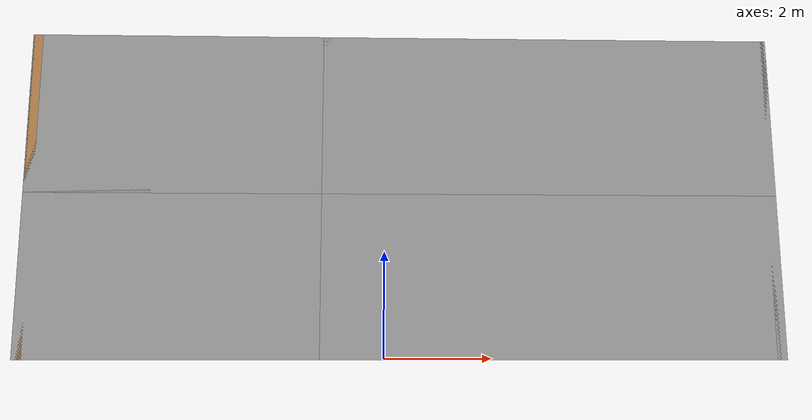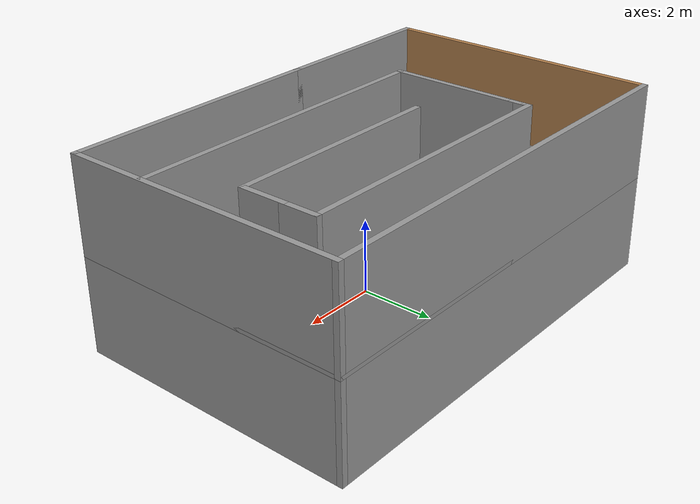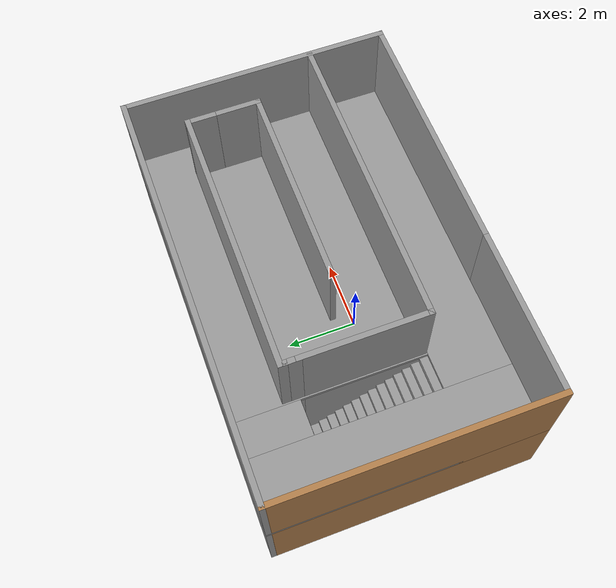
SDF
<?xml version='1.0'?>
<sdf version='1.7'>
  <model name='two_floor'>
    <pose>0.265 0.701087 0 0 -0 0</pose>
    <link name='Floor_3'>
      <pose>-0 -0 2.5 0 -0 0</pose>
      <visual name='Floor_3_Visual_0'>
        <pose>-4.797 0 0.05 0 -0 0</pose>
        <geometry>
          <box>
            <size>1.90601 7.5 0.1</size>
          </box>
        </geometry>
        <material>
          <script>
            <uri>file://media/materials/scripts/gazebo.material</uri>
            <name>Gazebo/Grey</name>
          </script>
          <ambient>1 1 1 1</ambient>
        </material>
        <meta>
          <layer>1</layer>
        </meta>
      </visual>
      <collision name='Floor_3_Collision_0'>
        <geometry>
          <box>
            <size>1.90601 7.5 0.1</size>
          </box>
        </geometry>
        <pose>-4.797 0 0.05 0 -0 0</pose>
      </collision>
      <visual name='Floor_3_Visual_1'>
        <pose>0.953003 -2.71297 0.05 0 -0 0</pose>
        <geometry>
          <box>
            <size>9.59399 2.07405 0.1</size>
          </box>
        </geometry>
        <material>
          <script>
            <uri>file://media/materials/scripts/gazebo.material</uri>
            <name>Gazebo/Grey</name>
          </script>
          <ambient>1 1 1 1</ambient>
        </material>
        <meta>
          <layer>1</layer>
        </meta>
      </visual>
      <collision name='Floor_3_Collision_1'>
        <geometry>
          <box>
            <size>9.59399 2.07405 0.1</size>
          </box>
        </geometry>
        <pose>0.953003 -2.71297 0.05 0 -0 0</pose>
      </collision>
      <visual name='Floor_3_Visual_2'>
        <pose>1.453 1.03703 0.05 0 -0 0</pose>
        <geometry>
          <box>
            <size>8.59399 5.42594 0.1</size>
          </box>
        </geometry>
        <material>
          <script>
            <uri>file://media/materials/scripts/gazebo.material</uri>
            <name>Gazebo/Grey</name>
          </script>
          <ambient>1 1 1 1</ambient>
        </material>
        <meta>
          <layer>1</layer>
        </meta>
      </visual>
      <collision name='Floor_3_Collision_2'>
        <geometry>
          <box>
            <size>8.59399 5.42594 0.1</size>
          </box>
        </geometry>
        <pose>1.453 1.03703 0.05 0 -0 0</pose>
      </collision>
      <visual name='Floor_3_Visual_3'>
        <pose>-3.34399 2.78703 0.05 0 -0 0</pose>
        <geometry>
          <box>
            <size>1 1.92595 0.1</size>
          </box>
        </geometry>
        <material>
          <script>
            <uri>file://media/materials/scripts/gazebo.material</uri>
            <name>Gazebo/Grey</name>
          </script>
          <ambient>1 1 1 1</ambient>
        </material>
        <meta>
          <layer>1</layer>
        </meta>
      </visual>
      <collision name='Floor_3_Collision_3'>
        <geometry>
          <box>
            <size>1 1.92595 0.1</size>
          </box>
        </geometry>
        <pose>-3.34399 2.78703 0.05 0 -0 0</pose>
      </collision>
    </link>
    <link name='Stairs_0'>
      <visual name='Stairs_0_Visual_0'>
        <pose>-3.34399 1.70739 0.083333 0 -0 0</pose>
        <geometry>
          <box>
            <size>1 0.233333 0.166667</size>
          </box>
        </geometry>
        <material>
          <script>
            <uri>file://media/materials/scripts/gazebo.material</uri>
            <name>Gazebo/Grey</name>
          </script>
          <ambient>1 1 1 1</ambient>
        </material>
        <meta>
          <layer>0</layer>
        </meta>
      </visual>
      <collision name='Stairs_0_Collision_0'>
        <geometry>
          <box>
            <size>1 0.233333 0.166667</size>
          </box>
        </geometry>
        <pose>-3.34399 1.70739 0.083333 0 -0 0</pose>
      </collision>
      <visual name='Stairs_0_Visual_1'>
        <pose>-3.34399 1.47405 0.25 0 -0 0</pose>
        <geometry>
          <box>
            <size>1 0.233333 0.166667</size>
          </box>
        </geometry>
        <material>
          <script>
            <uri>file://media/materials/scripts/gazebo.material</uri>
            <name>Gazebo/Grey</name>
          </script>
          <ambient>1 1 1 1</ambient>
        </material>
        <meta>
          <layer>0</layer>
        </meta>
      </visual>
      <collision name='Stairs_0_Collision_1'>
        <geometry>
          <box>
            <size>1 0.233333 0.166667</size>
          </box>
        </geometry>
        <pose>-3.34399 1.47405 0.25 0 -0 0</pose>
      </collision>
      <visual name='Stairs_0_Visual_2'>
        <pose>-3.34399 1.24072 0.416667 0 -0 0</pose>
        <geometry>
          <box>
            <size>1 0.233333 0.166667</size>
          </box>
        </geometry>
        <material>
          <script>
            <uri>file://media/materials/scripts/gazebo.material</uri>
            <name>Gazebo/Grey</name>
          </script>
          <ambient>1 1 1 1</ambient>
        </material>
        <meta>
          <layer>0</layer>
        </meta>
      </visual>
      <collision name='Stairs_0_Collision_2'>
        <geometry>
          <box>
            <size>1 0.233333 0.166667</size>
          </box>
        </geometry>
        <pose>-3.34399 1.24072 0.416667 0 -0 0</pose>
      </collision>
      <visual name='Stairs_0_Visual_3'>
        <pose>-3.34399 1.00739 0.583333 0 -0 0</pose>
        <geometry>
          <box>
            <size>1 0.233333 0.166667</size>
          </box>
        </geometry>
        <material>
          <script>
            <uri>file://media/materials/scripts/gazebo.material</uri>
            <name>Gazebo/Grey</name>
          </script>
          <ambient>1 1 1 1</ambient>
        </material>
        <meta>
          <layer>0</layer>
        </meta>
      </visual>
      <collision name='Stairs_0_Collision_3'>
        <geometry>
          <box>
            <size>1 0.233333 0.166667</size>
          </box>
        </geometry>
        <pose>-3.34399 1.00739 0.583333 0 -0 0</pose>
      </collision>
      <visual name='Stairs_0_Visual_4'>
        <pose>-3.34399 0.774055 0.75 0 -0 0</pose>
        <geometry>
          <box>
            <size>1 0.233333 0.166667</size>
          </box>
        </geometry>
        <material>
          <script>
            <uri>file://media/materials/scripts/gazebo.material</uri>
            <name>Gazebo/Grey</name>
          </script>
          <ambient>1 1 1 1</ambient>
        </material>
        <meta>
          <layer>0</layer>
        </meta>
      </visual>
      <collision name='Stairs_0_Collision_4'>
        <geometry>
          <box>
            <size>1 0.233333 0.166667</size>
          </box>
        </geometry>
        <pose>-3.34399 0.774055 0.75 0 -0 0</pose>
      </collision>
      <visual name='Stairs_0_Visual_5'>
        <pose>-3.34399 0.540722 0.916667 0 -0 0</pose>
        <geometry>
          <box>
            <size>1 0.233333 0.166667</size>
          </box>
        </geometry>
        <material>
          <script>
            <uri>file://media/materials/scripts/gazebo.material</uri>
            <name>Gazebo/Grey</name>
          </script>
          <ambient>1 1 1 1</ambient>
        </material>
        <meta>
          <layer>0</layer>
        </meta>
      </visual>
      <collision name='Stairs_0_Collision_5'>
        <geometry>
          <box>
            <size>1 0.233333 0.166667</size>
          </box>
        </geometry>
        <pose>-3.34399 0.540722 0.916667 0 -0 0</pose>
      </collision>
      <visual name='Stairs_0_Visual_6'>
        <pose>-3.34399 0.307389 1.08333 0 -0 0</pose>
        <geometry>
          <box>
            <size>1 0.233333 0.166667</size>
          </box>
        </geometry>
        <material>
          <script>
            <uri>file://media/materials/scripts/gazebo.material</uri>
            <name>Gazebo/Grey</name>
          </script>
          <ambient>1 1 1 1</ambient>
        </material>
        <meta>
          <layer>0</layer>
        </meta>
      </visual>
      <collision name='Stairs_0_Collision_6'>
        <geometry>
          <box>
            <size>1 0.233333 0.166667</size>
          </box>
        </geometry>
        <pose>-3.34399 0.307389 1.08333 0 -0 0</pose>
      </collision>
      <visual name='Stairs_0_Visual_7'>
        <pose>-3.34399 0.074055 1.25 0 -0 0</pose>
        <geometry>
          <box>
            <size>1 0.233333 0.166667</size>
          </box>
        </geometry>
        <material>
          <script>
            <uri>file://media/materials/scripts/gazebo.material</uri>
            <name>Gazebo/Grey</name>
          </script>
          <ambient>1 1 1 1</ambient>
        </material>
        <meta>
          <layer>0</layer>
        </meta>
      </visual>
      <collision name='Stairs_0_Collision_7'>
        <geometry>
          <box>
            <size>1 0.233333 0.166667</size>
          </box>
        </geometry>
        <pose>-3.34399 0.074055 1.25 0 -0 0</pose>
      </collision>
      <visual name='Stairs_0_Visual_8'>
        <pose>-3.34399 -0.159278 1.41667 0 -0 0</pose>
        <geometry>
          <box>
            <size>1 0.233333 0.166667</size>
          </box>
        </geometry>
        <material>
          <script>
            <uri>file://media/materials/scripts/gazebo.material</uri>
            <name>Gazebo/Grey</name>
          </script>
          <ambient>1 1 1 1</ambient>
        </material>
        <meta>
          <layer>0</layer>
        </meta>
      </visual>
      <collision name='Stairs_0_Collision_8'>
        <geometry>
          <box>
            <size>1 0.233333 0.166667</size>
          </box>
        </geometry>
        <pose>-3.34399 -0.159278 1.41667 0 -0 0</pose>
      </collision>
      <visual name='Stairs_0_Visual_9'>
        <pose>-3.34399 -0.392611 1.58333 0 -0 0</pose>
        <geometry>
          <box>
            <size>1 0.233333 0.166667</size>
          </box>
        </geometry>
        <material>
          <script>
            <uri>file://media/materials/scripts/gazebo.material</uri>
            <name>Gazebo/Grey</name>
          </script>
          <ambient>1 1 1 1</ambient>
        </material>
        <meta>
          <layer>0</layer>
        </meta>
      </visual>
      <collision name='Stairs_0_Collision_9'>
        <geometry>
          <box>
            <size>1 0.233333 0.166667</size>
          </box>
        </geometry>
        <pose>-3.34399 -0.392611 1.58333 0 -0 0</pose>
      </collision>
      <visual name='Stairs_0_Visual_10'>
        <pose>-3.34399 -0.625945 1.75 0 -0 0</pose>
        <geometry>
          <box>
            <size>1 0.233333 0.166667</size>
          </box>
        </geometry>
        <material>
          <script>
            <uri>file://media/materials/scripts/gazebo.material</uri>
            <name>Gazebo/Grey</name>
          </script>
          <ambient>1 1 1 1</ambient>
        </material>
        <meta>
          <layer>0</layer>
        </meta>
      </visual>
      <collision name='Stairs_0_Collision_10'>
        <geometry>
          <box>
            <size>1 0.233333 0.166667</size>
          </box>
        </geometry>
        <pose>-3.34399 -0.625945 1.75 0 -0 0</pose>
      </collision>
      <visual name='Stairs_0_Visual_11'>
        <pose>-3.34399 -0.859278 1.91667 0 -0 0</pose>
        <geometry>
          <box>
            <size>1 0.233333 0.166667</size>
          </box>
        </geometry>
        <material>
          <script>
            <uri>file://media/materials/scripts/gazebo.material</uri>
            <name>Gazebo/Grey</name>
          </script>
          <ambient>1 1 1 1</ambient>
        </material>
        <meta>
          <layer>0</layer>
        </meta>
      </visual>
      <collision name='Stairs_0_Collision_11'>
        <geometry>
          <box>
            <size>1 0.233333 0.166667</size>
          </box>
        </geometry>
        <pose>-3.34399 -0.859278 1.91667 0 -0 0</pose>
      </collision>
      <visual name='Stairs_0_Visual_12'>
        <pose>-3.34399 -1.09261 2.08333 0 -0 0</pose>
        <geometry>
          <box>
            <size>1 0.233333 0.166667</size>
          </box>
        </geometry>
        <material>
          <script>
            <uri>file://media/materials/scripts/gazebo.material</uri>
            <name>Gazebo/Grey</name>
          </script>
          <ambient>1 1 1 1</ambient>
        </material>
        <meta>
          <layer>0</layer>
        </meta>
      </visual>
      <collision name='Stairs_0_Collision_12'>
        <geometry>
          <box>
            <size>1 0.233333 0.166667</size>
          </box>
        </geometry>
        <pose>-3.34399 -1.09261 2.08333 0 -0 0</pose>
      </collision>
      <visual name='Stairs_0_Visual_13'>
        <pose>-3.34399 -1.32594 2.25 0 -0 0</pose>
        <geometry>
          <box>
            <size>1 0.233333 0.166667</size>
          </box>
        </geometry>
        <material>
          <script>
            <uri>file://media/materials/scripts/gazebo.material</uri>
            <name>Gazebo/Grey</name>
          </script>
          <ambient>1 1 1 1</ambient>
        </material>
        <meta>
          <layer>0</layer>
        </meta>
      </visual>
      <collision name='Stairs_0_Collision_13'>
        <geometry>
          <box>
            <size>1 0.233333 0.166667</size>
          </box>
        </geometry>
        <pose>-3.34399 -1.32594 2.25 0 -0 0</pose>
      </collision>
      <visual name='Stairs_0_Visual_14'>
        <pose>-3.34399 -1.55928 2.41667 0 -0 0</pose>
        <geometry>
          <box>
            <size>1 0.233333 0.166667</size>
          </box>
        </geometry>
        <material>
          <script>
            <uri>file://media/materials/scripts/gazebo.material</uri>
            <name>Gazebo/Grey</name>
          </script>
          <ambient>1 1 1 1</ambient>
        </material>
        <meta>
          <layer>0</layer>
        </meta>
      </visual>
      <collision name='Stairs_0_Collision_14'>
        <geometry>
          <box>
            <size>1 0.233333 0.166667</size>
          </box>
        </geometry>
        <pose>-3.34399 -1.55928 2.41667 0 -0 0</pose>
      </collision>
    </link>
    <link name='Wall_10'>
      <collision name='Wall_10_Collision'>
        <geometry>
          <box>
            <size>11.5 0.15 2.5</size>
          </box>
        </geometry>
        <pose>0 0 1.25 0 -0 0</pose>
      </collision>
      <visual name='Wall_10_Visual'>
        <pose>0 0 1.25 0 -0 0</pose>
        <geometry>
          <box>
            <size>11.5 0.15 2.5</size>
          </box>
        </geometry>
        <material>
          <script>
            <uri>file://media/materials/scripts/gazebo.material</uri>
            <name>Gazebo/Grey</name>
          </script>
          <ambient>1 1 1 1</ambient>
        </material>
        <meta>
          <layer>0</layer>
        </meta>
      </visual>
      <pose>-0 3.675 0 0 -0 3.14159</pose>
    </link>
    <link name='Wall_11'>
      <collision name='Wall_11_Collision'>
        <geometry>
          <box>
            <size>7.5 0.15 2.5</size>
          </box>
        </geometry>
        <pose>0 0 1.25 0 -0 0</pose>
      </collision>
      <visual name='Wall_11_Visual'>
        <pose>0 0 1.25 0 -0 0</pose>
        <geometry>
          <box>
            <size>7.5 0.15 2.5</size>
          </box>
        </geometry>
        <material>
          <script>
            <uri>file://media/materials/scripts/gazebo.material</uri>
            <name>Gazebo/Wood</name>
          </script>
          <ambient>1 1 1 1</ambient>
        </material>
        <meta>
          <layer>0</layer>
        </meta>
      </visual>
      <pose>-5.675 -0 0 0 -0 -1.5708</pose>
    </link>
    <link name='Wall_12'>
      <collision name='Wall_12_Collision'>
        <geometry>
          <box>
            <size>4.65 0.15 2.5</size>
          </box>
        </geometry>
        <pose>0 0 1.25 0 -0 0</pose>
      </collision>
      <visual name='Wall_12_Visual'>
        <pose>0 0 1.25 0 -0 0</pose>
        <geometry>
          <box>
            <size>4.65 0.15 2.5</size>
          </box>
        </geometry>
        <material>
          <script>
            <uri>file://media/materials/scripts/gazebo.material</uri>
            <name>Gazebo/Grey</name>
          </script>
          <ambient>1 1 1 1</ambient>
        </material>
        <meta>
          <layer>0</layer>
        </meta>
      </visual>
      <pose>-3.425 -3.675 0 0 -0 0</pose>
    </link>
    <link name='Wall_15'>
      <collision name='Wall_15_Collision'>
        <geometry>
          <box>
            <size>5.75 0.15 2.5</size>
          </box>
        </geometry>
        <pose>0 0 1.25 0 -0 0</pose>
      </collision>
      <visual name='Wall_15_Visual'>
        <pose>0 0 1.25 0 -0 0</pose>
        <geometry>
          <box>
            <size>5.75 0.15 2.5</size>
          </box>
        </geometry>
        <material>
          <script>
            <uri>file://media/materials/scripts/gazebo.material</uri>
            <name>Gazebo/Grey</name>
          </script>
          <ambient>1 1 1 1</ambient>
        </material>
        <meta>
          <layer>0</layer>
        </meta>
      </visual>
      <pose>1.82306 0.27131 0 0 -0 0</pose>
    </link>
    <link name='Wall_16'>
      <collision name='Wall_16_Collision'>
        <geometry>
          <box>
            <size>1.25 0.15 2.5</size>
          </box>
        </geometry>
        <pose>0 0 1.25 0 -0 0</pose>
      </collision>
      <visual name='Wall_16_Visual'>
        <pose>0 0 1.25 0 -0 0</pose>
        <geometry>
          <box>
            <size>1.25 0.15 2.5</size>
          </box>
        </geometry>
        <material>
          <script>
            <uri>file://media/materials/scripts/gazebo.material</uri>
            <name>Gazebo/Grey</name>
          </script>
          <ambient>1 1 1 1</ambient>
        </material>
        <meta>
          <layer>0</layer>
        </meta>
      </visual>
      <pose>4.62307 0.82131 0 0 -0 1.5708</pose>
    </link>
    <link name='Wall_17'>
      <collision name='Wall_17_Collision'>
        <geometry>
          <box>
            <size>1 0.15 2.5</size>
          </box>
        </geometry>
        <pose>0 0 1.25 0 -0 0</pose>
      </collision>
      <visual name='Wall_17_Visual'>
        <pose>0 0 1.25 0 -0 0</pose>
        <geometry>
          <box>
            <size>1 0.15 2.5</size>
          </box>
        </geometry>
        <material>
          <script>
            <uri>file://media/materials/scripts/gazebo.material</uri>
            <name>Gazebo/Grey</name>
          </script>
          <ambient>1 1 1 1</ambient>
        </material>
        <meta>
          <layer>0</layer>
        </meta>
      </visual>
      <pose>4.62307 1.79631 0 0 -0 1.5708</pose>
    </link>
    <link name='Wall_18'>
      <collision name='Wall_18_Collision'>
        <geometry>
          <box>
            <size>7.5 0.15 2.5</size>
          </box>
        </geometry>
        <pose>0 0 1.25 0 -0 0</pose>
      </collision>
      <visual name='Wall_18_Visual'>
        <pose>0 0 1.25 0 -0 0</pose>
        <geometry>
          <box>
            <size>7.5 0.15 2.5</size>
          </box>
        </geometry>
        <material>
          <script>
            <uri>file://media/materials/scripts/gazebo.material</uri>
            <name>Gazebo/Grey</name>
          </script>
          <ambient>1 1 1 1</ambient>
        </material>
        <meta>
          <layer>0</layer>
        </meta>
      </visual>
      <pose>0.948065 2.22131 0 0 -0 3.14159</pose>
    </link>
    <link name='Wall_19'>
      <collision name='Wall_19_Collision'>
        <geometry>
          <box>
            <size>0.25 0.15 2.5</size>
          </box>
        </geometry>
        <pose>0 0 1.25 0 -0 0</pose>
      </collision>
      <visual name='Wall_19_Visual'>
        <pose>0 0 1.25 0 -0 0</pose>
        <geometry>
          <box>
            <size>0.25 0.15 2.5</size>
          </box>
        </geometry>
        <material>
          <script>
            <uri>file://media/materials/scripts/gazebo.material</uri>
            <name>Gazebo/Grey</name>
          </script>
          <ambient>1 1 1 1</ambient>
        </material>
        <meta>
          <layer>0</layer>
        </meta>
      </visual>
      <pose>-2.72694 2.17131 0 0 -0 -1.5708</pose>
    </link>
    <link name='Wall_20'>
      <collision name='Wall_20_Collision'>
        <geometry>
          <box>
            <size>0.5 0.15 2.5</size>
          </box>
        </geometry>
        <pose>0 0 1.25 0 -0 0</pose>
      </collision>
      <visual name='Wall_20_Visual'>
        <pose>0 0 1.25 0 -0 0</pose>
        <geometry>
          <box>
            <size>0.5 0.15 2.5</size>
          </box>
        </geometry>
        <material>
          <script>
            <uri>file://media/materials/scripts/gazebo.material</uri>
            <name>Gazebo/Grey</name>
          </script>
          <ambient>1 1 1 1</ambient>
        </material>
        <meta>
          <layer>0</layer>
        </meta>
      </visual>
      <pose>-2.72694 1.94631 0 0 -0 -1.5708</pose>
    </link>
    <link name='Wall_21'>
      <collision name='Wall_21_Collision'>
        <geometry>
          <box>
            <size>3.5 0.15 2.5</size>
          </box>
        </geometry>
        <pose>0 0 1.25 0 -0 0</pose>
      </collision>
      <visual name='Wall_21_Visual'>
        <pose>0 0 1.25 0 -0 0</pose>
        <geometry>
          <box>
            <size>3.5 0.15 2.5</size>
          </box>
        </geometry>
        <material>
          <script>
            <uri>file://media/materials/scripts/gazebo.material</uri>
            <name>Gazebo/Grey</name>
          </script>
          <ambient>1 1 1 1</ambient>
        </material>
        <meta>
          <layer>0</layer>
        </meta>
      </visual>
      <pose>-2.72694 0.09631 0 0 -0 -1.5708</pose>
    </link>
    <link name='Wall_22'>
      <collision name='Wall_22_Collision'>
        <geometry>
          <box>
            <size>8.5 0.15 2.5</size>
          </box>
        </geometry>
        <pose>0 0 1.25 0 -0 0</pose>
      </collision>
      <visual name='Wall_22_Visual'>
        <pose>0 0 1.25 0 -0 0</pose>
        <geometry>
          <box>
            <size>8.5 0.15 2.5</size>
          </box>
        </geometry>
        <material>
          <script>
            <uri>file://media/materials/scripts/gazebo.material</uri>
            <name>Gazebo/Grey</name>
          </script>
          <ambient>1 1 1 1</ambient>
        </material>
        <meta>
          <layer>0</layer>
        </meta>
      </visual>
      <pose>1.44806 -1.57869 0 0 -0 0</pose>
    </link>
    <link name='Wall_65'>
      <collision name='Wall_65_Collision'>
        <geometry>
          <box>
            <size>7 0.15 2.5</size>
          </box>
        </geometry>
        <pose>0 0 1.25 0 -0 0</pose>
      </collision>
      <visual name='Wall_65_Visual'>
        <pose>0 0 1.25 0 -0 0</pose>
        <geometry>
          <box>
            <size>7 0.15 2.5</size>
          </box>
        </geometry>
        <material>
          <script>
            <uri>file://media/materials/scripts/gazebo.material</uri>
            <name>Gazebo/Grey</name>
          </script>
          <ambient>1 1 1 1</ambient>
        </material>
        <meta>
          <layer>1</layer>
        </meta>
      </visual>
      <pose>2.25 -3.675 2.5 0 -0 0</pose>
    </link>
    <link name='Wall_66'>
      <collision name='Wall_66_Collision'>
        <geometry>
          <box>
            <size>7.5 0.15 2.5</size>
          </box>
        </geometry>
        <pose>0 0 1.25 0 -0 0</pose>
      </collision>
      <visual name='Wall_66_Visual'>
        <pose>0 0 1.25 0 -0 0</pose>
        <geometry>
          <box>
            <size>7.5 0.15 2.5</size>
          </box>
        </geometry>
        <material>
          <script>
            <uri>file://media/materials/scripts/gazebo.material</uri>
            <name>Gazebo/Grey</name>
          </script>
          <ambient>1 1 1 1</ambient>
        </material>
        <meta>
          <layer>1</layer>
        </meta>
      </visual>
      <pose>5.675 -0 2.5 0 -0 1.5708</pose>
    </link>
    <link name='Wall_67'>
      <collision name='Wall_67_Collision'>
        <geometry>
          <box>
            <size>11.5 0.15 2.5</size>
          </box>
        </geometry>
        <pose>0 0 1.25 0 -0 0</pose>
      </collision>
      <visual name='Wall_67_Visual'>
        <pose>0 0 1.25 0 -0 0</pose>
        <geometry>
          <box>
            <size>11.5 0.15 2.5</size>
          </box>
        </geometry>
        <material>
          <script>
            <uri>file://media/materials/scripts/gazebo.material</uri>
            <name>Gazebo/Grey</name>
          </script>
          <ambient>1 1 1 1</ambient>
        </material>
        <meta>
          <layer>1</layer>
        </meta>
      </visual>
      <pose>-0 3.675 2.5 0 -0 3.14159</pose>
    </link>
    <link name='Wall_68'>
      <collision name='Wall_68_Collision'>
        <geometry>
          <box>
            <size>7.5 0.15 2.5</size>
          </box>
        </geometry>
        <pose>0 0 1.25 0 -0 0</pose>
      </collision>
      <visual name='Wall_68_Visual'>
        <pose>0 0 1.25 0 -0 0</pose>
        <geometry>
          <box>
            <size>7.5 0.15 2.5</size>
          </box>
        </geometry>
        <material>
          <script>
            <uri>file://media/materials/scripts/gazebo.material</uri>
            <name>Gazebo/Wood</name>
          </script>
          <ambient>1 1 1 1</ambient>
        </material>
        <meta>
          <layer>1</layer>
        </meta>
      </visual>
      <pose>-5.675 -0 2.5 0 -0 -1.5708</pose>
    </link>
    <link name='Wall_69'>
      <collision name='Wall_69_Collision'>
        <geometry>
          <box>
            <size>4.65 0.15 2.5</size>
          </box>
        </geometry>
        <pose>0 0 1.25 0 -0 0</pose>
      </collision>
      <visual name='Wall_69_Visual'>
        <pose>0 0 1.25 0 -0 0</pose>
        <geometry>
          <box>
            <size>4.65 0.15 2.5</size>
          </box>
        </geometry>
        <material>
          <script>
            <uri>file://media/materials/scripts/gazebo.material</uri>
            <name>Gazebo/Grey</name>
          </script>
          <ambient>1 1 1 1</ambient>
        </material>
        <meta>
          <layer>1</layer>
        </meta>
      </visual>
      <pose>-3.425 -3.675 2.5 0 -0 0</pose>
    </link>
    <link name='Wall_70'>
      <collision name='Wall_70_Collision'>
        <geometry>
          <box>
            <size>5.75 0.15 2.5</size>
          </box>
        </geometry>
        <pose>0 0 1.25 0 -0 0</pose>
      </collision>
      <visual name='Wall_70_Visual'>
        <pose>0 0 1.25 0 -0 0</pose>
        <geometry>
          <box>
            <size>5.75 0.15 2.5</size>
          </box>
        </geometry>
        <material>
          <script>
            <uri>file://media/materials/scripts/gazebo.material</uri>
            <name>Gazebo/Grey</name>
          </script>
          <ambient>1 1 1 1</ambient>
        </material>
        <meta>
          <layer>1</layer>
        </meta>
      </visual>
      <pose>1.82306 0.27131 2.5 0 -0 0</pose>
    </link>
    <link name='Wall_71'>
      <collision name='Wall_71_Collision'>
        <geometry>
          <box>
            <size>1.25 0.15 2.5</size>
          </box>
        </geometry>
        <pose>0 0 1.25 0 -0 0</pose>
      </collision>
      <visual name='Wall_71_Visual'>
        <pose>0 0 1.25 0 -0 0</pose>
        <geometry>
          <box>
            <size>1.25 0.15 2.5</size>
          </box>
        </geometry>
        <material>
          <script>
            <uri>file://media/materials/scripts/gazebo.material</uri>
            <name>Gazebo/Grey</name>
          </script>
          <ambient>1 1 1 1</ambient>
        </material>
        <meta>
          <layer>1</layer>
        </meta>
      </visual>
      <pose>4.62307 0.82131 2.5 0 -0 1.5708</pose>
    </link>
    <link name='Wall_72'>
      <collision name='Wall_72_Collision'>
        <geometry>
          <box>
            <size>1 0.15 2.5</size>
          </box>
        </geometry>
        <pose>0 0 1.25 0 -0 0</pose>
      </collision>
      <visual name='Wall_72_Visual'>
        <pose>0 0 1.25 0 -0 0</pose>
        <geometry>
          <box>
            <size>1 0.15 2.5</size>
          </box>
        </geometry>
        <material>
          <script>
            <uri>file://media/materials/scripts/gazebo.material</uri>
            <name>Gazebo/Grey</name>
          </script>
          <ambient>1 1 1 1</ambient>
        </material>
        <meta>
          <layer>1</layer>
        </meta>
      </visual>
      <pose>4.62307 1.79631 2.5 0 -0 1.5708</pose>
    </link>
    <link name='Wall_73'>
      <collision name='Wall_73_Collision'>
        <geometry>
          <box>
            <size>7.5 0.15 2.5</size>
          </box>
        </geometry>
        <pose>0 0 1.25 0 -0 0</pose>
      </collision>
      <visual name='Wall_73_Visual'>
        <pose>0 0 1.25 0 -0 0</pose>
        <geometry>
          <box>
            <size>7.5 0.15 2.5</size>
          </box>
        </geometry>
        <material>
          <script>
            <uri>file://media/materials/scripts/gazebo.material</uri>
            <name>Gazebo/Grey</name>
          </script>
          <ambient>1 1 1 1</ambient>
        </material>
        <meta>
          <layer>1</layer>
        </meta>
      </visual>
      <pose>0.948065 2.22131 2.5 0 -0 3.14159</pose>
    </link>
    <link name='Wall_74'>
      <collision name='Wall_74_Collision'>
        <geometry>
          <box>
            <size>0.25 0.15 2.5</size>
          </box>
        </geometry>
        <pose>0 0 1.25 0 -0 0</pose>
      </collision>
      <visual name='Wall_74_Visual'>
        <pose>0 0 1.25 0 -0 0</pose>
        <geometry>
          <box>
            <size>0.25 0.15 2.5</size>
          </box>
        </geometry>
        <material>
          <script>
            <uri>file://media/materials/scripts/gazebo.material</uri>
            <name>Gazebo/Grey</name>
          </script>
          <ambient>1 1 1 1</ambient>
        </material>
        <meta>
          <layer>1</layer>
        </meta>
      </visual>
      <pose>-2.72694 2.17131 2.5 0 -0 -1.5708</pose>
    </link>
    <link name='Wall_75'>
      <collision name='Wall_75_Collision'>
        <geometry>
          <box>
            <size>0.5 0.15 2.5</size>
          </box>
        </geometry>
        <pose>0 0 1.25 0 -0 0</pose>
      </collision>
      <visual name='Wall_75_Visual'>
        <pose>0 0 1.25 0 -0 0</pose>
        <geometry>
          <box>
            <size>0.5 0.15 2.5</size>
          </box>
        </geometry>
        <material>
          <script>
            <uri>file://media/materials/scripts/gazebo.material</uri>
            <name>Gazebo/Grey</name>
          </script>
          <ambient>1 1 1 1</ambient>
        </material>
        <meta>
          <layer>1</layer>
        </meta>
      </visual>
      <pose>-2.72694 1.94631 2.5 0 -0 -1.5708</pose>
    </link>
    <link name='Wall_76'>
      <collision name='Wall_76_Collision'>
        <geometry>
          <box>
            <size>3.5 0.15 2.5</size>
          </box>
        </geometry>
        <pose>0 0 1.25 0 -0 0</pose>
      </collision>
      <visual name='Wall_76_Visual'>
        <pose>0 0 1.25 0 -0 0</pose>
        <geometry>
          <box>
            <size>3.5 0.15 2.5</size>
          </box>
        </geometry>
        <material>
          <script>
            <uri>file://media/materials/scripts/gazebo.material</uri>
            <name>Gazebo/Grey</name>
          </script>
          <ambient>1 1 1 1</ambient>
        </material>
        <meta>
          <layer>1</layer>
        </meta>
      </visual>
      <pose>-2.72694 0.09631 2.5 0 -0 -1.5708</pose>
    </link>
    <link name='Wall_77'>
      <collision name='Wall_77_Collision'>
        <geometry>
          <box>
            <size>8.5 0.15 2.5</size>
          </box>
        </geometry>
        <pose>0 0 1.25 0 -0 0</pose>
      </collision>
      <visual name='Wall_77_Visual'>
        <pose>0 0 1.25 0 -0 0</pose>
        <geometry>
          <box>
            <size>8.5 0.15 2.5</size>
          </box>
        </geometry>
        <material>
          <script>
            <uri>file://media/materials/scripts/gazebo.material</uri>
            <name>Gazebo/Grey</name>
          </script>
          <ambient>1 1 1 1</ambient>
        </material>
        <meta>
          <layer>1</layer>
        </meta>
      </visual>
      <pose>1.44806 -1.57869 2.5 0 -0 0</pose>
    </link>
    <link name='Wall_8'>
      <collision name='Wall_8_Collision'>
        <geometry>
          <box>
            <size>7 0.15 2.5</size>
          </box>
        </geometry>
        <pose>0 0 1.25 0 -0 0</pose>
      </collision>
      <visual name='Wall_8_Visual'>
        <pose>0 0 1.25 0 -0 0</pose>
        <geometry>
          <box>
            <size>7 0.15 2.5</size>
          </box>
        </geometry>
        <material>
          <script>
            <uri>file://media/materials/scripts/gazebo.material</uri>
            <name>Gazebo/Grey</name>
          </script>
          <ambient>1 1 1 1</ambient>
        </material>
        <meta>
          <layer>0</layer>
        </meta>
      </visual>
      <pose>2.25 -3.675 0 0 -0 0</pose>
    </link>
    <link name='Wall_9'>
      <collision name='Wall_9_Collision'>
        <geometry>
          <box>
            <size>7.5 0.15 2.5</size>
          </box>
        </geometry>
        <pose>0 0 1.25 0 -0 0</pose>
      </collision>
      <visual name='Wall_9_Visual'>
        <pose>0 0 1.25 0 -0 0</pose>
        <geometry>
          <box>
            <size>7.5 0.15 2.5</size>
          </box>
        </geometry>
        <material>
          <script>
            <uri>file://media/materials/scripts/gazebo.material</uri>
            <name>Gazebo/Grey</name>
          </script>
          <ambient>1 1 1 1</ambient>
        </material>
        <meta>
          <layer>0</layer>
        </meta>
      </visual>
      <pose>5.675 -0 0 0 -0 1.5708</pose>
    </link>
    <static>1</static>
  </model>
</sdf>
